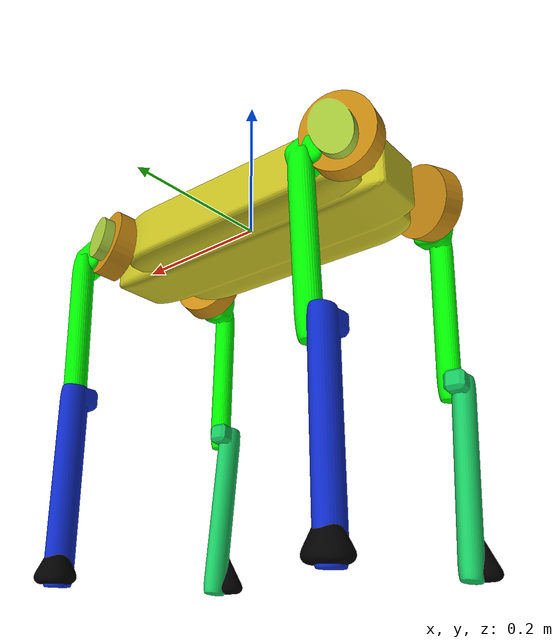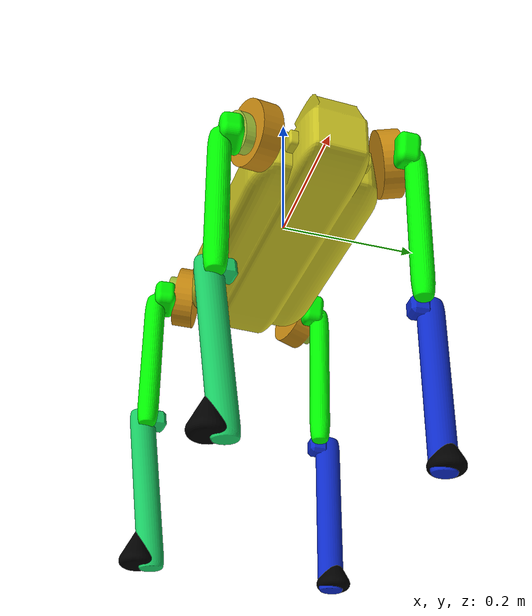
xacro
<?xml version="1.0"?>
<robot xmlns:xacro="http://www.ros.org/wiki/xacro" name="my_robot">
    <xacro:arg name="prefix" default="" />
    <xacro:arg name="use_mock_hardware" default="true" />

    <xacro:include filename="$(find first_robot)/description/constants.xacro"/>
    <xacro:include filename="inertial_base.xacro" />
    <xacro:include filename="robot_core.xacro" />
    <xacro:include filename="gz_control.xacro" />
    <xacro:include filename="lidar_2d_camera.xacro" />
    <xacro:include filename="camera.xacro" />
    <xacro:include filename="imu_link.xacro" />
</robot>

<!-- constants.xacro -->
<robot xmlns:xacro="http://www.ros.org/wiki/xacro">
    <material name="white">
        <color rgba="1 1 1 1" />
    </material>

    <material name="blue">
        <color rgba="0 0 1 1" />
    </material>
    <material name="green">
        <color rgba="0 1 0 1" />
    </material>
    <material name="yellow">
        <color rgba="1 1 0 1" />
    </material>
    <material name="cyan">
        <color rgba="0 1 1 1" />
    </material>
    <material name="pink">
        <color rgba="1 0.5 0.5 1" />
    </material>

    <material name="purple">
        <color rgba="0.5 0 0.5 1" />
    </material>
    <material name="black">
        <color rgba="0 0 0 1" />
    </material>

    <material name="silver">
        <color rgba="${233/255} ${233/255} ${216/255} 1.0"/>
    </material>

    <material name="orange">
        <color rgba="${255/255} ${108/255} ${10/255} 1.0"/>
    </material>

    <material name="brown">
        <color rgba="${222/255} ${207/255} ${195/255} 1.0"/>
    </material>

    <material name="red">
        <color rgba="0.8 0.0 0.0 1.0"/>
    </material>

    <!-- Constants for robot dimensions -->
    <xacro:property name="PI" value="3.1415926535897931"/>
    <xacro:property name="stick_mass" value="0.00001"/>

    <!-- simplified collision value -->
    <xacro:property name="trunk_width" value="0.0935"/>
    <xacro:property name="trunk_length" value="0.3762"/>
    <xacro:property name="trunk_height" value="0.114"/>
    <xacro:property name="hip_radius" value="0.046"/>
    <xacro:property name="hip_length" value="0.04"/>
    <xacro:property name="knee_shoulder_radius" value="0.041"/>
    <xacro:property name="knee_shoulder_length" value="0.032"/>
    <xacro:property name="knee_width" value="0.0245"/>
    <xacro:property name="knee_height" value="0.034"/>
    <xacro:property name="ankle_width" value="0.016"/>
    <xacro:property name="ankle_height" value="0.016"/>
    <xacro:property name="foot_radius" value="0.03"/>
    <xacro:property name="stick_radius" value="0.01"/>
    <xacro:property name="stick_length" value="0.2"/>

    <!-- dynamics inertial value -->
    <!-- trunk -->
    <xacro:property name="trunk_mass" value="6.921"/>
    <xacro:property name="trunk_com_x" value="0.021112"/>
    <xacro:property name="trunk_com_y" value="0.00"/>
    <xacro:property name="trunk_com_z" value="-0.005366"/>
    <xacro:property name="trunk_ixx" value="0.02448"/>
    <xacro:property name="trunk_ixy" value="0.00012166"/>
    <xacro:property name="trunk_ixz" value="0.0014849"/>
    <xacro:property name="trunk_iyy" value="0.098077"/>
    <xacro:property name="trunk_iyz" value="-3.12E-05"/>
    <xacro:property name="trunk_izz" value="0.107"/>

    <!-- simplified collision value -->
    <xacro:property name="trunk_width" value="0.0935"/>
    <xacro:property name="trunk_length" value="0.3762"/>
    <xacro:property name="trunk_height" value="0.114"/>
    <xacro:property name="hip_radius" value="0.046"/>
    <xacro:property name="hip_length" value="0.04"/>
    <xacro:property name="knee_shoulder_radius" value="0.041"/>
    <xacro:property name="knee_shoulder_length" value="0.032"/>
    <xacro:property name="knee_width" value="0.0245"/>
    <xacro:property name="knee_height" value="0.034"/>
    <xacro:property name="ankle_width" value="0.016"/>
    <xacro:property name="ankle_height" value="0.016"/>
    <xacro:property name="foot_radius" value="0.02"/>
    <xacro:property name="stick_radius" value="0.01"/>
    <xacro:property name="stick_length" value="0.2"/>

    <!-- kinematic value -->
    <xacro:property name="knee_offset" value="0.0955"/>
    <xacro:property name="knee_length" value="0.213"/>
    <xacro:property name="ankle_length" value="0.213"/>

    <!-- leg offset from trunk center value -->
    <xacro:property name="leg_offset_x" value="0.1934"/>
    <xacro:property name="leg_offset_y" value="0.0465"/>
    <xacro:property name="hip_offset" value="0.0955"/>

    <!-- offset of link locations (left front) -->
    <xacro:property name="hip_offset_x" value="0.1934"/>
    <xacro:property name="hip_offset_y" value="0.0465"/>
    <xacro:property name="hip_offset_z" value="0.0"/>

    <xacro:property name="knee_offset_x" value="0"/>
    <xacro:property name="knee_offset_y" value="0.0955"/>
    <xacro:property name="knee_offset_z" value="0.0"/>

    <xacro:property name="ankle_offset_x" value="0.0"/>
    <xacro:property name="ankle_offset_y" value="0.0"/>
    <xacro:property name="ankle_offset_z" value="-0.213"/>

    <!-- joint limits -->
    <xacro:property name="damping" value="0.01"/>
    <xacro:property name="friction" value="0.2"/>
    <xacro:property name="hip_position_max" value="1.0472"/>
    <xacro:property name="hip_position_min" value="-1.0472"/>
    <xacro:property name="hip_velocity_max" value="30.1"/>
    <xacro:property name="hip_torque_max" value="23.7"/>
    <xacro:property name="knee_position_max" value="3.4907"/>
    <xacro:property name="knee_position_min" value="-1.5708"/>
    <xacro:property name="knee_velocity_max" value="30.1"/>
    <xacro:property name="knee_torque_max" value="23.7"/>
    <xacro:property name="ankle_position_max" value="1.0"/>
    <xacro:property name="ankle_position_min" value="-1.0"/>
    <xacro:property name="ankle_velocity_max" value="20.06"/>
    <xacro:property name="ankle_torque_max" value="35.55"/>

    <!-- dynamics inertial value -->
    <!-- trunk -->
    <xacro:property name="trunk_mass" value="6.921"/>
    <xacro:property name="trunk_com_x" value="0.021112"/>
    <xacro:property name="trunk_com_y" value="0.00"/>
    <xacro:property name="trunk_com_z" value="-0.005366"/>
    <xacro:property name="trunk_ixx" value="0.02448"/>
    <xacro:property name="trunk_ixy" value="0.00012166"/>
    <xacro:property name="trunk_ixz" value="0.0014849"/>
    <xacro:property name="trunk_iyy" value="0.098077"/>
    <xacro:property name="trunk_iyz" value="-3.12E-05"/>
    <xacro:property name="trunk_izz" value="0.107"/>

    <!-- hip (left front) -->
    <xacro:property name="hip_mass" value="0.678"/>
    <xacro:property name="hip_com_x" value="-0.0054"/>
    <xacro:property name="hip_com_y" value="0.00194"/>
    <xacro:property name="hip_com_z" value="-0.000105"/>
    <xacro:property name="hip_ixx" value="0.00048"/>
    <xacro:property name="hip_ixy" value="-3.01E-06"/>
    <xacro:property name="hip_ixz" value="1.11E-06"/>
    <xacro:property name="hip_iyy" value="0.000884"/>
    <xacro:property name="hip_iyz" value="-1.42E-06"/>
    <xacro:property name="hip_izz" value="0.000596"/>

    <!-- knee -->
    <xacro:property name="knee_mass" value="1.152"/>
    <xacro:property name="knee_com_x" value="-0.00374"/>
    <xacro:property name="knee_com_y" value="-0.0223"/>
    <xacro:property name="knee_com_z" value="-0.0327"/>
    <xacro:property name="knee_ixx" value="0.00584"/>
    <xacro:property name="knee_ixy" value="8.72E-05"/>
    <xacro:property name="knee_ixz" value="-0.000289"/>
    <xacro:property name="knee_iyy" value="0.0058"/>
    <xacro:property name="knee_iyz" value="0.000808"/>
    <xacro:property name="knee_izz" value="0.00103"/>

    <!-- ankle -->
    <xacro:property name="ankle_mass" value="0.154"/>
    <xacro:property name="ankle_com_x" value="0.00548"/>
    <xacro:property name="ankle_com_y" value="-0.000975"/>
    <xacro:property name="ankle_com_z" value="-0.115"/>
    <xacro:property name="ankle_ixx" value="0.00108"/>
    <xacro:property name="ankle_ixy" value="3.4E-07"/>
    <xacro:property name="ankle_ixz" value="1.72E-05"/>
    <xacro:property name="ankle_iyy" value="0.0011"/>
    <xacro:property name="ankle_iyz" value="8.28E-06"/>
    <xacro:property name="ankle_izz" value="3.29E-05"/>

    <!-- foot -->
    <xacro:property name="foot_mass" value="0.06"/>

</robot>

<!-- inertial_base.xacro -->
<robot xmlns:xacro="http://www.ros.org/wiki/xacro">

    <!-- Specify some standard inertial calculations https://en.wikipedia.org/wiki/List_of_moments_of_inertia -->
    <!-- These make use of xacro's mathematical functionality -->
    <!-- INERTIAL MACRO -->
    <xacro:macro name="inertial_box_leg" params="mass box_size">
        <inertial>
            <mass value="${mass}" />
            <origin xyz="0 0 0" rpy="0 0 0" />
            <inertia ixx="${(1/12.0)*mass*(pow(box_size[1],2)+pow(box_size[2],2))}" iyy="${(1/12.0)*mass*(pow(box_size[0],2)+pow(box_size[2],2))}" izz="${(1/12.0)*mass*(pow(box_size[0],2)+pow(box_size[1],2))}" ixy="0.0" ixz="0.0" iyz="0.0" />
        </inertial>
    </xacro:macro>

    <xacro:macro name="inertial_sphere" params="mass radius *origin">
        <inertial>
            <xacro:insert_block name="origin"/>
            <mass value="${mass}" />
            <inertia ixx="${(2/5) * mass * (radius*radius)}" ixy="0.0" ixz="0.0" iyy="${(2/5) * mass * (radius*radius)}" iyz="0.0" izz="${(2/5) * mass * (radius*radius)}" />
        </inertial>
    </xacro:macro>

    <xacro:macro name="inertial_box" params="mass x y z *origin">
        <inertial>
            <xacro:insert_block name="origin"/>
            <mass value="${mass}" />
            <inertia ixx="${(1/12) * mass * (y*y+z*z)}" ixy="0.0" ixz="0.0" iyy="${(1/12) * mass * (x*x+z*z)}" iyz="0.0" izz="${(1/12) * mass * (x*x+y*y)}" />
        </inertial>
    </xacro:macro>

    <xacro:macro name="inertial_cylinder" params="mass length radius *origin">
        <inertial>
            <xacro:insert_block name="origin"/>
            <mass value="${mass}" />
            <inertia ixx="${(1/12) * mass * (3*radius*radius + length*length)}" ixy="0.0" ixz="0.0" iyy="${(1/12) * mass * (3*radius*radius + length*length)}" iyz="0.0" izz="${(1/2) * mass * (radius*radius)}" />
        </inertial>
    </xacro:macro>

</robot>

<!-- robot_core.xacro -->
<robot xmlns:xacro="http://www.ros.org/wiki/xacro">
  <!-- Base -->
  <link name="base_link">
    <visual name="base_link_visual">
      <origin rpy="0 0 0" xyz="0 0 0" />
      <geometry>
        <box size="0.3762 0.02 0.05" />
      </geometry>
      <material name="white" />
    </visual>
    <inertial>
      <origin xyz="0 0 0" />
      <mass value="2.2" />
      <inertia ixx="0.001" iyy="0.001" izz="0.001" ixy="0" ixz="0" iyz="0" />
    </inertial>
  </link>

  <joint name="floating_base" type="fixed">
    <parent link="base_link" />
    <child link="trunk" />
    <origin xyz="-0.021112 0 0" rpy="0 0 0" />
  </joint>

  <!-- Trunk  Thân robot -->
  <link name="trunk">
    <visual name="trunk_visual">
      <origin rpy="0 0 0" xyz="0 0 0" />
      <geometry>
        <mesh filename="file://$(find first_robot)/meshes/trunk_new.dae" scale="1 1 1" />
      </geometry>
    </visual>
    <collision name="trunk_collision">
      <origin rpy="0 0 0" xyz="0 0 0" />
      <geometry>
        <box size="${trunk_length} ${trunk_width} ${trunk_height}" />
      </geometry>
    </collision>
    <inertial>
      <origin rpy="0 0 0" xyz="${trunk_com_x} ${trunk_com_y} ${trunk_com_z}" />
      <mass value="${trunk_mass}" />
      <inertia ixx="${trunk_ixx}" ixy="${trunk_ixy}" ixz="${trunk_ixz}" iyy="${trunk_iyy}"
        iyz="${trunk_iyz}" izz="${trunk_izz}" />
    </inertial>
  </link>

  <!-- IMPORT LEG PATTERN -->
  <xacro:include filename="$(find first_robot)/description/leg_block_v3.xacro" />

  <!-- Gọi macro leg cho từng chân -->
  <xacro:leg prefix="front_left" side="-1" use_dae="False" pos="1" />
  <xacro:leg prefix="front_right" side="1" use_dae="False" pos="1" />
  <xacro:leg prefix="rear_left" side="-1" use_dae="False" pos="-1" />
  <xacro:leg prefix="rear_right" side="1" use_dae="False" pos="-1" />

</robot>

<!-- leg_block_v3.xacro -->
<robot xmlns:xacro="http://www.ros.org/wiki/xacro">

  <!-- Định nghĩa macro cho một chân -->
  <!-- prefix  Tên của chân lf  front left  rf  front right  lh  rear left  rh  rear right     -->
  <!-- side  Chân đối xứng với chân này 1 bên phải  âm 1  bên trái  Dùng để nhân chia với tọa độ -->
  <!-- use dae  Sử dụng mesh hay không True  sử dụng  False  không sử dụng -->
  <!-- pos  Chân trước hay chân sau  1  chân trước  âm 1  chân sau-->

  <xacro:macro name="leg" params="prefix side pos use_dae">
    <!-- bắt đầu phần háng -->
    <!-- Hip Link -->
    <link name="${prefix}_hip_link">
      <visual name="${prefix}_hip_visual">
        <!-- Chân phải và phía trước -->
        <xacro:if value="${(side == 1) and (pos == 1)}">
          <origin rpy="${PI} 0 0" xyz="0 0 0" />
        </xacro:if>
        <!-- Chân trái và phía sau -->
        <xacro:if value="${(side == 1) and (pos == -1)}">
          <origin rpy="${PI} ${PI} 0" xyz="0 0 0" />
        </xacro:if>
        <!-- Chân trái và phía trước -->
        <xacro:if value="${(side == -1) and (pos == 1)}">
          <origin rpy="0 0 0" xyz="0 0 0" />
        </xacro:if>
        <!-- Chân phải và phía sau -->
        <xacro:if value="${(side == -1) and (pos == -1)}">
          <origin rpy="0 ${PI} 0" xyz="0 0 0" />
        </xacro:if>

        <geometry>

          <mesh filename="file://$(find first_robot)/meshes/hip.dae" scale="1 1 1" />
          <!-- dài 2cm  cố định thân trên và các chân -->
        </geometry>
      </visual>
      <collision name="${prefix}_hip_collision">
        <origin rpy="0 0 0" xyz="0 ${hip_offset*side} 0" />
        <geometry>
          <cylinder length="${hip_length + 0.01}" radius="${hip_radius + 0.01}" />
        </geometry>
      </collision>
      <inertial>
        <origin rpy="0 0 0" xyz="${hip_com_x*pos} ${hip_com_y*side} ${hip_com_z}" />
        <mass value="${hip_mass}" />
        <inertia ixx="${hip_ixx}" ixy="${hip_ixy*side*pos}" ixz="${hip_ixz*pos}" iyy="${hip_iyy}" iyz="${hip_iyz*side}" izz="${hip_izz}" />
      </inertial>
    </link>

    <joint name="${prefix}_hip_joint" initial_position="0.0" description="Hip joint side ${side} and pos ${pos}" type="revolute">
      <parent link="trunk" />
      <child link="${prefix}_hip_link" />

      <!-- Chân trái và phía trước -->
      <xacro:if value="${(side == 1) and (pos == 1)}">
        <origin rpy="0 0 0" xyz="${leg_offset_x} ${-leg_offset_y} 0" />
      </xacro:if>
      <!-- Chân trái và phía sau -->
      <xacro:if value="${(side == 1) and (pos == -1)}">
        <origin rpy="0 0 0" xyz="${-leg_offset_x} ${-leg_offset_y} 0" />
      </xacro:if>
      <!-- Chân phải và phía trước -->
      <xacro:if value="${(side == -1) and (pos == 1)}">
        <origin rpy="0 0 0" xyz="${leg_offset_x} ${leg_offset_y} 0" />

      </xacro:if>
      <!-- Chân phải và phía sau -->
      <xacro:if value="${(side == -1) and (pos == -1)}">
        <origin rpy="0 0 0" xyz="${-leg_offset_x} ${leg_offset_y} 0" />
      </xacro:if>

      <axis xyz="1 0 0" />

      <dynamics damping="${damping}" friction="${friction}" />
      <limit effort="${hip_torque_max}" velocity="${hip_velocity_max}" lower="${hip_position_min}" upper="${hip_position_max}" />

      <!-- Vị trí gắn khớp háng vào body-->
    </joint>

    <!-- *** Bắt đầu phần đùi chân *** -->
    <!-- knee Link -->
    <link name="${prefix}_knee_link">
      <visual name="${prefix}_knee_visual">
        <origin rpy="0 0 0" xyz="0 0 0" />
        <geometry>
          <xacro:if value="${(side == 1) }">
            <mesh filename="file://$(find first_robot)/meshes/knee_left.dae" scale="1 1 1" />
          </xacro:if>
          <xacro:if value="${(side == -1) }">
            <mesh filename="file://$(find first_robot)/meshes/knee_right.dae" scale="1 1 1" />
          </xacro:if>
        </geometry>
        <material name="green" />
      </visual>
      <collision name="${prefix}_knee_collision">
        <origin rpy="0 0 0" xyz="0 0 0" />
        <geometry>
          <box size="${knee_length + 0.01} ${knee_width + 0.01} ${knee_height + 0.01}" />
        </geometry>
      </collision>
      <inertial>
        <origin rpy="0 0 0" xyz="${knee_com_x} ${knee_com_y*-side} ${knee_com_z}" />
        <mass value="${knee_mass}" />
        <inertia ixx="${knee_ixx}" ixy="${knee_ixy*-side}" ixz="${knee_ixz}" iyy="${knee_iyy}" iyz="${knee_iyz*-side}" izz="${knee_izz}" />
      </inertial>
    </link>

    <!-- knee Joint  Đùi  quay về sau  -->
    <joint name="${prefix}_knee_joint" initial_position="0.0" description="Knee joint side ${side} and pos ${pos}" type="revolute">
      <origin rpy="0 0 0" xyz="0 ${knee_offset*-side} 0" />
      <parent link="${prefix}_hip_link" />
      <!-- Gắn vào motor háng mô phỏng -->
      <child link="${prefix}_knee_link" />
      <axis xyz="0 1 0" />
      <dynamics damping="${damping}" friction="${friction}" />
      <limit effort="${knee_torque_max}" velocity="${knee_velocity_max}" lower="${knee_position_min}" upper="${knee_position_max}" />
    </joint>
    <!-- *** Kết thúc phần đùi chân *** -->

    <!-- *** Bắt đầu phần cẳng chân *** -->
    <!-- ankle Link -->
    <link name="${prefix}_ankle_link">
      <visual name="${prefix}_ankle_visual">
        <origin rpy="0 0 0" xyz="0 0 0" />
        <geometry>

          <xacro:if value="${(side == 1) }">
            <mesh  filename="file://$(find first_robot)/meshes/ankle_left.dae" scale="1 1 1" />
          </xacro:if>
          <xacro:if value="${(side == -1) }">
            <mesh filename="file://$(find first_robot)/meshes/ankle_right.dae" scale="1 1 1" />

          </xacro:if>
        </geometry>
        <!-- Màu tím -->
      </visual>
      <collision name="${prefix}_ankle_collision">
        <origin rpy="0 0 0" xyz="0 0 0" />
        <geometry>
          <box size="${ankle_length + 0.01} ${ankle_width + 0.01} ${ankle_height + 0.01}" />
        </geometry>
      </collision>
      <inertial>
        <origin rpy="0 0 0" xyz="${ankle_com_x} ${ankle_com_y} ${ankle_com_z}" />
        <mass value="${ankle_mass}" />
        <inertia ixx="${ankle_ixx}" ixy="${ankle_ixy}" ixz="${ankle_ixz}" iyy="${ankle_iyy}" iyz="${ankle_iyz}" izz="${ankle_izz}" />
      </inertial>
    </link>

    <!-- ankle Joint  Cẳng chân  quay về trước 45  -->
    <joint name="${prefix}_ankle_joint" initial_position="0.0" type="revolute">
      <origin rpy="0 0 0" xyz="0 0 ${-ankle_length}" />
      <parent link="${prefix}_knee_link" />
      <child link="${prefix}_ankle_link" />
      <axis xyz="0 1 0" />
      <dynamics damping="${damping}" friction="${friction}" />
      <limit effort="${ankle_torque_max}" velocity="${ankle_velocity_max}" lower="${ankle_position_min}" upper="${ankle_position_max}" />
      <gazebo>
        <plugin name="${prefix}_ankle_controller" filename="libgazebo_ros_joint_position_controller.so">
          <robotNamespace>/first_robot</robotNamespace>
          <jointName>${prefix}_ankle_joint</jointName>
          <commandTopic>/${prefix}_ankle_controller/command</commandTopic>
          <updateRate>30</updateRate>
          <pid>
            <p>100.0</p>
            <i>0.0</i>
            <d>10.0</d>
          </pid>
        </plugin>
        <!-- Plugin cảm biến lực mô phỏng -->
        <plugin name="${prefix}_force_torque_sensor" filename="libgazebo_ros_force_torque_sensor.so">
          <robotNamespace>/first_robot</robotNamespace>
          <jointName>${prefix}_ankle_joint</jointName>
          <topicName>/${prefix}_force_torque_sensor</topicName>
        </plugin>
      </gazebo>
      <sensor name="${prefix}_force_torque" type="force_torque">
        <update_rate>30</update_rate>
      </sensor>
    </joint>

    <!-- *** Kết thúc phần cẳng chân *** -->

    <!-- *** Bắt đầu phần bàn chân *** -->
    <!-- Foot Link -->
    <link name="${prefix}_foot_link">
      <visual name="${prefix}_foot_visual">
        <origin rpy="0 0 0" xyz="0 0 0" />
        <geometry>
          <mesh filename="file://$(find first_robot)/meshes/foot.dae" scale="1 1 1" />
        </geometry>
        <material name="black" />
      </visual>
      <collision name="${prefix}_foot_collision">
        <origin rpy="0 0 0" xyz="0 0 0" />
        <geometry>
          <sphere radius="${foot_radius}" />
        </geometry>
      </collision>
      <inertial>
        <mass value="${foot_mass}" />
        <inertia ixx="${(2*foot_mass)/5.0*(foot_radius*foot_radius)}" ixy="0.0" ixz="0.0" iyy="${(2*foot_mass)/5.0*(foot_radius*foot_radius)}" iyz="0.0" izz="${(2*foot_mass)/5.0*(foot_radius*foot_radius)}" />
      </inertial>
    </link>

    <!-- Foot Joint -->
    <joint name="${prefix}_foot_joint" type="fixed">
      <origin rpy="0 0 0" xyz="0 0 -0.213" />
      <parent link="${prefix}_ankle_link" />
      <child link="${prefix}_foot_link" />
    </joint>

    <!-- Transmission cho các joint -->
    <transmission name="${prefix}_knee_trans">
      <type>transmission_interface/SimpleTransmission</type>
      <joint name="${prefix}_knee_joint" />
      <actuator name="${prefix}_knee_motor">
        <mechanical_reduction>1</mechanical_reduction>
      </actuator>
    </transmission>

    <transmission name="${prefix}_ankle_trans">
      <type>transmission_interface/SimpleTransmission</type>
      <joint name="${prefix}_ankle_joint" />
      <actuator name="${prefix}_ankle_motor">
        <mechanical_reduction>1</mechanical_reduction>
      </actuator>
    </transmission>

  </xacro:macro>

</robot>

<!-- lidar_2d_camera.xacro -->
<robot xmlns:xacro="http://www.ros.org/wiki/xacro" >

    <joint name="laser_joint" type="fixed">
        <parent link="base_link" />
        <child link="lidar_link" />
        <origin xyz="0.05 0 0.045" rpy="0 0 0" />
    </joint>

    <link name="lidar_link">
        <visual>
            <geometry>
                <cylinder radius="0.025" length="0.02" />
            </geometry>
            <material name="red" />
        </visual>
        <collision>
            <geometry>
                <cylinder radius="0.025" length="0.02" />
            </geometry>
        </collision>
        <xacro:inertial_cylinder mass="0.01" length="0.02" radius="0.05">
            <origin xyz="0 0 0" rpy="0 0 0" />
        </xacro:inertial_cylinder>
    </link>

    <gazebo reference="lidar_link">
        <sensor name="lidar_link" type="gpu_lidar">
            <always_on>true</always_on>
            <update_rate>2</update_rate>
            <topic>/scan</topic>

            <visualize>true</visualize>
            <frame_id>lidar_link</frame_id>
            <gz_frame_id>lidar_link</gz_frame_id>
            <ign_frame_id>lidar_link</ign_frame_id>

            <ros>
                <namespace>/</namespace>
                <remapping>scan:=scan</remapping>
            </ros>
            <ray>
                <scan>
                    <horizontal>
                        <samples>720</samples>
                        <resolution>1</resolution>
                        <min_angle>-1.5708</min_angle>
                        <max_angle>1.5708</max_angle>
                    </horizontal>
                </scan>
                <range>
                    <min>0.1</min>
                    <max>10.0</max>
                </range>
                <noise>
                    <type>gaussian</type>
                    <mean>0.0</mean>
                    <stddev>0.01</stddev>
                </noise>
            </ray>

        </sensor>
    </gazebo>

</robot>

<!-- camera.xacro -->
<robot xmlns:xacro="http://www.ros.org/wiki/xacro">

    <joint name="camera_joint" type="fixed">
        <parent link="base_link" />
        <child link="camera_link" />
        <origin xyz="0.190 0 0.043"  rpy="0 0 0"/>
    </joint>

    <link name="camera_link">
        <visual>
            <origin rpy="0 0 0" xyz="0 0 0"/>
            <geometry>
                <sphere radius="0.005"/>
            </geometry>
            <material name="red" />
        </visual>
        <collision>
            <origin rpy="0 0 0" xyz="0 0 0"/>
            <geometry>
                <sphere radius="0.005"/>
            </geometry>
        </collision>
        <inertial>
            <mass value="0.005"/>
            <origin rpy="0 0 0" xyz="0 0 0"/>
            <inertia ixx="0.0001" ixy="0" ixz="0" iyy="0.0001" iyz="0" izz="0.0001"/>
        </inertial>
    </link>
    <gazebo reference="camera_link">
        <material>Gazebo/Red</material>

        <sensor name="camera" type="camera">
            <camera>
                <horizontal_fov>1.047</horizontal_fov>
                <image>
                    <width>320</width>
                    <height>240</height>
                </image>
                <clip>
                    <near>0.1</near>
                    <far>100</far>
                </clip>
            </camera>
            <always_on>1</always_on>
            <update_rate>30</update_rate>
            <visualize>true</visualize>
            <topic>camera</topic>
        </sensor>

    </gazebo>

</robot>

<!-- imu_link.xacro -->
<robot xmlns:xacro="http://www.ros.org/wiki/xacro">

    <link name="imu_link">
        <inertial>
            <mass value="0.001" />
            <origin rpy="0 0 0" xyz="0 0 0" />
            <inertia ixx="0.0001" ixy="0" ixz="0" iyy="0.0001" iyz="0" izz="0.0001" />
        </inertial>
        <visual>
            <origin rpy="0 0 0" xyz="0 0 0" />
            <geometry>
                <box size="0.001 0.001 0.01" />
            </geometry>
            <material name="yellow" />
        </visual>
        <collision>
            <origin rpy="0 0 0" xyz="0 0 0" />
            <geometry>
                <box size=".001 .001 .01" />
            </geometry>
        </collision>
    </link>

    <joint name="imu_joint" type="fixed">
        <parent link="trunk" />
        <child link="imu_link" />
        <origin xyz="0 0 0.1" rpy="0 0 0" />
        <!-- Đặt IMU gần trọng tâm -->
    </joint>

    <gazebo reference="imu_link">
        <sensor name="imu_sensor" type="imu">
            <always_on>true</always_on>
            <update_rate>200</update_rate>
            <topic>imu/data</topic>
            <plugin name="gz::sim::systems::Imu" filename="gz-sim-imu-system">
                <ros>
                    <namespace>/</namespace>
                </ros>
            </plugin>
            <imu>
                <noise type="gaussian">
                    <rate>
                        <mean>0.0</mean>
                        <stddev>0.005</stddev> <!-- Giảm nhiễu -->
                    </rate>
                    <accel>
                        <mean>0.0</mean>
                        <stddev>0.005</stddev>
                    </accel>
                </noise>
            </imu>
        </sensor>
    </gazebo>

</robot>
